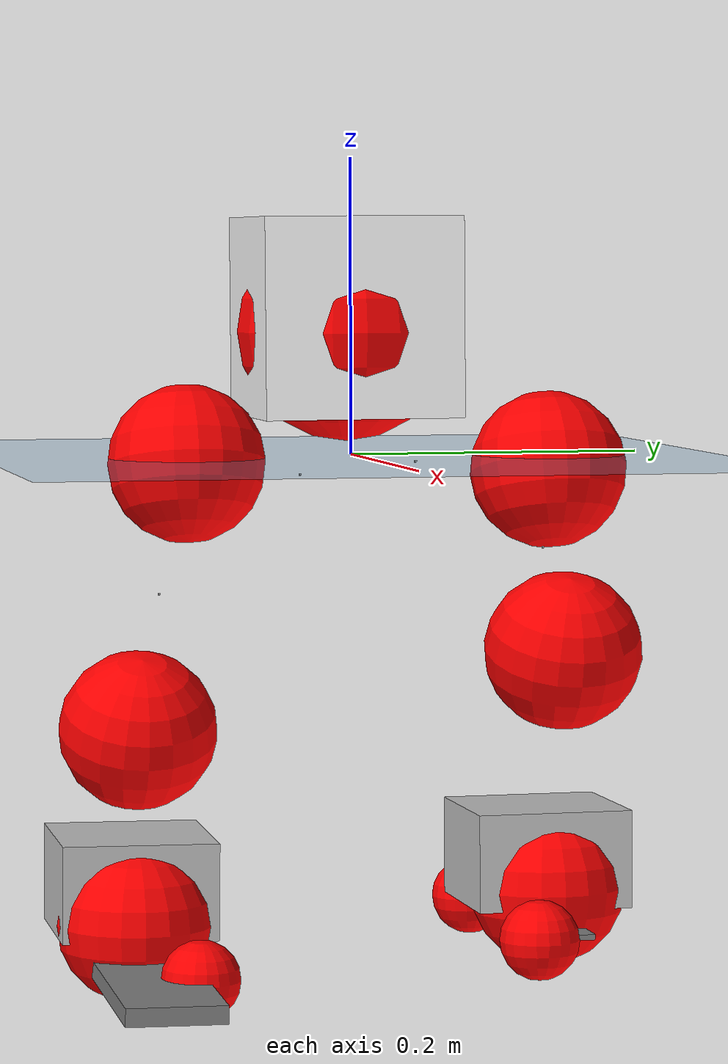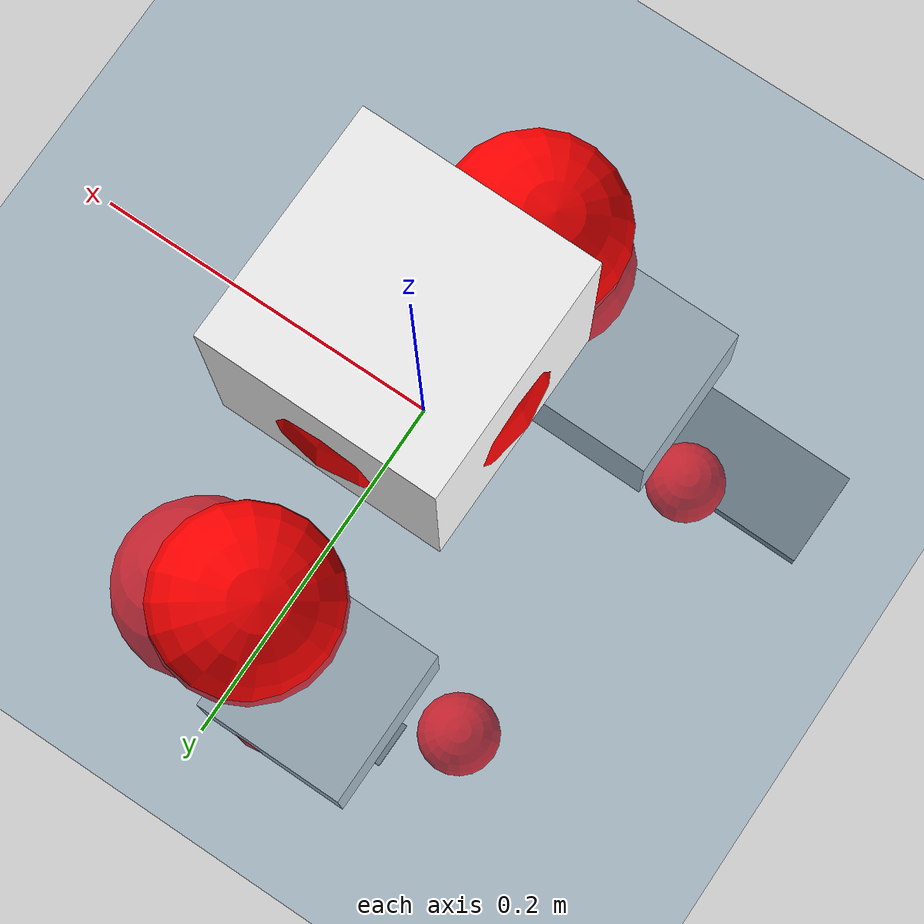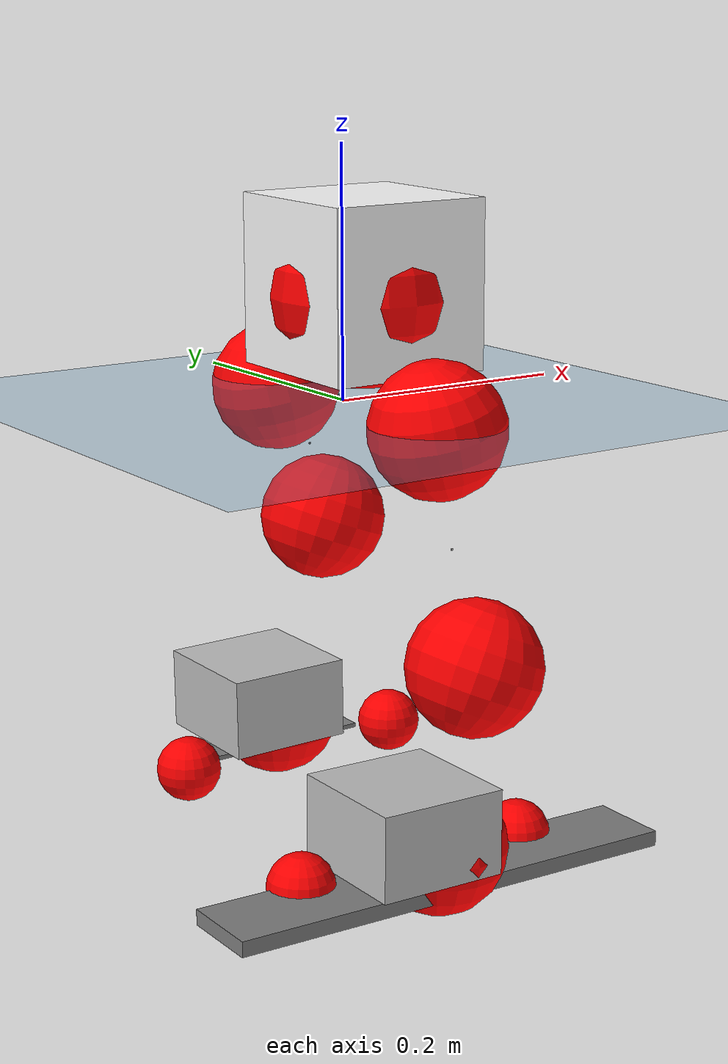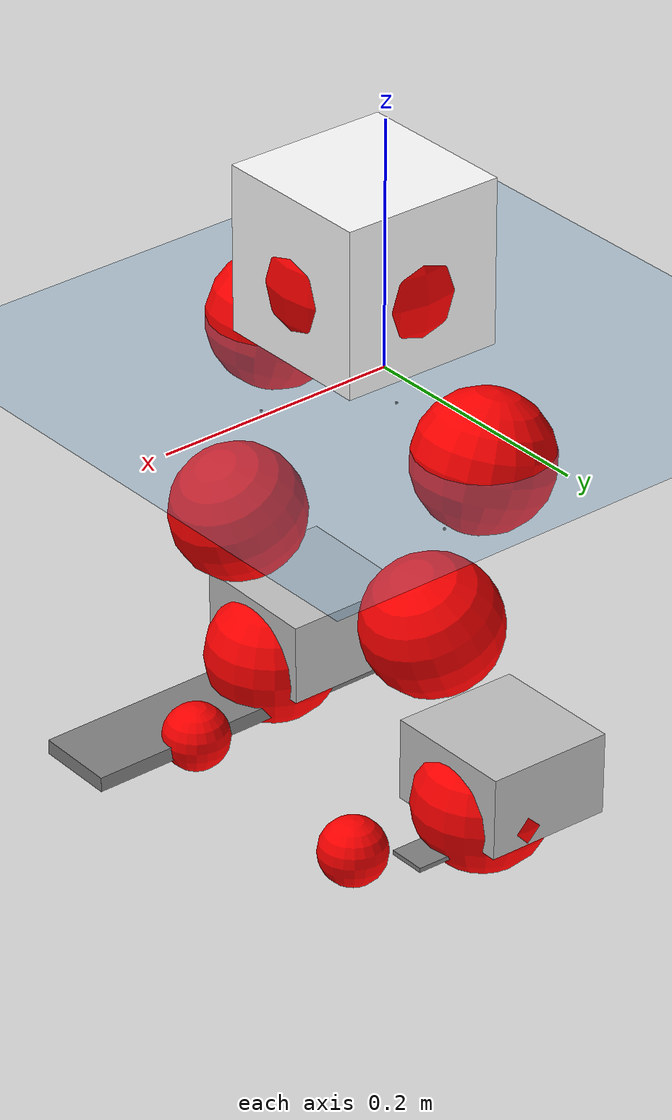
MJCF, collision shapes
<mujoco model="pi_12dof_release_v1">
  <compiler angle="radian" assetdir="assets" balanceinertia="true" inertiafromgeom="false"/>

  <option timestep="0.005" density="1.2" viscosity="2e-05"/>

  <size nkey="1"/>

  <visual>
    <quality shadowsize="8192"/>
    <map shadowclip="0.5"/>
  </visual>

  <default>
    <default class="/">
      <joint armature="0.01" damping="0.01" frictionloss="0.01"/>
      <geom contype="0" conaffinity="0" group="1" solref="-1000 -80"/>
      <site size="0.01 0.005 0.005" group="5"/>
      <general forcelimited="true" biastype="affine" gainprm="20" biasprm="0 -20 -0.5"/>
      <default class="foot">
        <geom size="0.0845 0.036 0.005" type="box" condim="6" group="4" priority="1" friction="0.9 0.2 0.2" solimp="0.015 1 0.005"/>
      </default>
      <default class="reward_collision_sphere">
        <geom group="5" rgba="1 0 0 1"/>
      </default>
    </default>
  </default>

  <asset>
    <texture type="skybox" colorspace="auto" name="//unnamed_texture_0" builtin="gradient" rgb1="0.95 0.95 0.95" rgb2="0.95 0.95 0.95" width="100" height="600"/>
    <texture type="2d" colorspace="auto" name="texplane" builtin="checker" rgb1="0.345 0.575 0.748" rgb2="0.345 0.575 0.748" markrgb="1 1 1" width="512" height="512"/>
    <material name="MatPlane" class="/" texture="texplane" texuniform="true" texrepeat="2 2" specular="0.9"/>
    <mesh name="baselink_1" class="/" file="baselink_1.STL"/>
    <mesh name="r_hip_pitch_link" class="/" file="r_hip_pitch_link.STL"/>
    <mesh name="r_hip_roll_link" class="/" file="r_hip_roll_link.STL"/>
    <mesh name="r_thigh_link" class="/" file="r_thigh_link.STL"/>
    <mesh name="r_calf_link" class="/" file="r_calf_link.STL"/>
    <mesh name="r_ankle_pitch_link" class="/" file="r_ankle_pitch_link.STL"/>
    <mesh name="r_ankle_roll_link" class="/" file="r_ankle_roll_link.STL"/>
    <mesh name="l_hip_pitch_link" class="/" file="l_hip_pitch_link.STL"/>
    <mesh name="l_hip_roll_link" class="/" file="l_hip_roll_link.STL"/>
    <mesh name="l_thigh_link" class="/" file="l_thigh_link.STL"/>
    <mesh name="l_calf_link" class="/" file="l_calf_link.STL"/>
    <mesh name="l_ankle_pitch_link" class="/" file="l_ankle_pitch_link.STL"/>
    <mesh name="l_ankle_roll_link" class="/" file="l_ankle_roll_link.STL"/>
  </asset>

  <worldbody>
    <geom name="floor" class="/" size="100 100 0.125" type="plane" group="0" material="MatPlane"/>
    <light name="toplight_shadow" class="/" pos="0 0 5" dir="0.0990148 0.0990148 -0.990148" type="directional" ambient="0.04 0.04 0.04" diffuse="0.55 0.55 0.55" specular="0.12 0.12 0.12"/>
    <light name="toplight_fill" class="/" pos="0 0 5" dir="0.0990148 0.0990148 -0.990148" type="directional" castshadow="false" ambient="0.04 0.04 0.04" diffuse="0.3 0.3 0.3" specular="0.08 0.08 0.08"/>
    <body name="trunk" pos="0.0143502 -0.0065081 0.0117462" quat="0.999978 0.00339163 -0.00188695 -0.00541552">
      <inertial pos="0.0155467 -0.012324 0.0369074" quat="0.639693 -0.00544636 0.0302047 0.768018" mass="4.34451" diaginertia="0.0483798 0.0658239 0.00314859"/>
      <joint name="//unnamed_joint_0" type="free"/>
      <geom name="//unnamed_geom_1" class="/" type="mesh" density="0" rgba="1 1 1 1" mesh="baselink_1"/>
      <geom name="//unnamed_geom_2" class="/" size="0.0667538 0.0667538 0.0667538" pos="0 0 0.0819617" type="box" rgba="1 1 1 1"/>
      <geom name="//unnamed_geom_3" class="reward_collision_sphere" size="0.0734292" pos="0 0 0.0717165"/>
      <site name="imu" class="/" pos="-0.0617774 0.0980734 0.0492919" size="0.0133508"/>
      <camera name="track" class="/" pos="0 -2.98541 0" quat="0.707107 0.707107 0 0" mode="trackcom"/>
      <camera name="ego_camera" class="/" pos="0.1116 0 0.184414" quat="-0.5 -0.5 0.5 0.5"/>
      <body name="r_hip_pitch_link" pos="-0.00411785 -0.0310179 -0.0243105" quat="0.993098 -0.00587334 -0.117141 -0.000207683">
        <inertial pos="0.013248 -0.0872939 0.00825087" quat="-0.0902954 0.697071 -0.0167106 0.711097" mass="0.681714" diaginertia="0.00061627 0.000546726 6.20419e-05"/>
        <joint name="r_hip_pitch_joint" class="/" pos="0 0 0" axis="0.0435408 -0.998718 -0.0258355" stiffness="0.0863284" range="-1.81514 1.14881" armature="0.0215091" damping="0" frictionloss="0.00751208"/>
        <geom name="//unnamed_geom_4" class="/" type="mesh" density="0" rgba="0.75294 0.75294 0.75294 1" mesh="r_hip_pitch_link"/>
        <geom name="//unnamed_geom_5" class="/" size="0.000667538 0.000667538 0.000667538" type="box" rgba="0.75294 0.75294 0.75294 1"/>
        <body name="r_hip_roll_link" pos="0.000426289 -0.0771546 0.00789254" quat="0.999999 0.000127909 0.000961183 0.000595041">
          <inertial pos="0.00182003 0.0180275 -0.0426437" quat="0.684154 -0.0599063 -0.109607 0.718562" mass="0.947545" diaginertia="0.0020949 0.00223825 0.000123996"/>
          <joint name="r_hip_roll_joint" class="/" pos="0 0 0" axis="-0.997391 0.0576836 0.0434044" stiffness="0.0634535" range="-0.230858 0.147998" armature="0.00643024" damping="0.0602579" frictionloss="0.0196164"/>
          <geom name="//unnamed_geom_6" class="/" type="mesh" density="0" rgba="0.75294 0.75294 0.75294 1" mesh="r_hip_roll_link"/>
          <geom name="//unnamed_geom_7" class="/" size="0.000667538 0.000667538 0.000667538" type="box" rgba="0.75294 0.75294 0.75294 1"/>
          <geom name="//unnamed_geom_8" class="reward_collision_sphere" size="0.0534031"/>
          <body name="r_thigh_link" pos="-0.0201435 -0.0184374 -0.0849865" quat="1 0.000118241 0.00014398 -1.88255e-05">
            <inertial pos="0.00894705 0.014098 -0.0626106" quat="0.73332 0.679826 -0.0087939 0.000931043" mass="0.199734" diaginertia="0.000717215 0.000735847 6.07821e-05"/>
            <joint name="r_thigh_joint" class="/" pos="0 0 0" axis="-0.0658919 -0.0132477 -0.997739" range="-0.478145 0.383584" armature="0.00813887" damping="0.083032" frictionloss="0.026489"/>
            <geom name="//unnamed_geom_9" class="/" type="mesh" density="0" rgba="0.75294 0.75294 0.75294 1" mesh="r_thigh_link"/>
            <geom name="//unnamed_geom_10" class="/" size="0.000667538 0.000667538 0.000667538" type="box" rgba="0.75294 0.75294 0.75294 1"/>
            <body name="r_calf_link" pos="-0.0114546 -0.0159017 -0.090014" quat="0.947087 0.000852892 0.320976 -0.000134324">
              <inertial pos="0.0081194 0.0121654 -0.0753725" quat="0.995589 -0.0716325 0.00370446 0.0604811" mass="1.53776" diaginertia="0.0228134 0.0173885 0.000138514"/>
              <joint name="r_calf_joint" class="/" pos="0 0 0" axis="0.00796505 -0.999281 -0.0370694" stiffness="0.0863087" range="-2.00012 0.683255" armature="0.0243142" damping="0" frictionloss="0.0159003"/>
              <geom name="//unnamed_geom_11" class="/" type="mesh" density="0" rgba="0.75294 0.75294 0.75294 1" mesh="r_calf_link"/>
              <geom name="//unnamed_geom_12" class="/" size="0.000667538 0.000667538 0.000667538" type="box" rgba="0.75294 0.75294 0.75294 1"/>
              <geom name="//unnamed_geom_13" class="reward_collision_sphere" size="0.0534031"/>
              <body name="r_ankle_pitch_link" pos="-0.0113115 0.00403789 -0.12799" quat="0.979575 -0.00164384 -0.20104 -0.00353803">
                <inertial pos="0.00909285 0.00436963 0.0183409" quat="-0.0831041 0.68964 -0.048964 0.717699" mass="0.287142" diaginertia="0.00199858 0.00127734 0.000105056"/>
                <joint name="r_ankle_pitch_joint" class="/" pos="0 0 0" axis="-0.00361239 -0.998744 0.0499722" range="-1.34624 0.120087" armature="0.0131453" damping="0.00223716" frictionloss="0.0022443"/>
                <geom name="//unnamed_geom_14" class="/" type="mesh" density="0" rgba="0.75294 0.75294 0.75294 1" mesh="r_ankle_pitch_link"/>
                <geom name="//unnamed_geom_15" class="/" size="0.052068 0.0534031 0.0333769" type="box" rgba="0.75294 0.75294 0.75294 1"/>
                <body name="r_ankle_roll_link" pos="0.105953 -0.0013135 -0.00333033" quat="1 0.000356771 0.000319188 -0.00012519">
                  <inertial pos="-0.0427782 -0.00362918 -0.0347828" quat="0.594097 0.435224 0.383945 0.55697" mass="1.83515" diaginertia="0.00895538 0.00723243 0.000486103"/>
                  <joint name="r_ankle_roll_joint" class="/" pos="0 0 0" axis="-0.996228 0.0801871 0.0331629" range="-0.425265 0.484966" armature="0.026198" damping="0" frictionloss="0.0215781"/>
                  <geom name="//unnamed_geom_16" class="/" type="mesh" density="0" rgba="0.75294 0.75294 0.75294 1" mesh="r_ankle_roll_link"/>
                  <geom name="//unnamed_geom_17" class="/" type="mesh" rgba="0.75294 0.75294 0.75294 1" mesh="r_ankle_roll_link"/>
                  <geom name="right_foot" class="foot" size="0.189866 0.0332075 0.00610957" pos="-0.0758882 0 -0.0450789"/>
                  <geom name="//unnamed_geom_19" class="reward_collision_sphere" size="0.0534031" pos="-0.0744002 0 -0.0204904"/>
                  <geom name="//unnamed_geom_20" class="reward_collision_sphere" size="0.0267015" pos="0.0223201 0.0298541 -0.0409808"/>
                  <geom name="//unnamed_geom_21" class="reward_collision_sphere" size="0.0267015" pos="-0.178561 0.0298541 -0.0409808"/>
                  <site name="right_foot" class="foot" pos="-0.0758882 0 -0.0450789" size="0.0133508"/>
                </body>
              </body>
            </body>
          </body>
        </body>
      </body>
      <body name="l_hip_pitch_link" pos="0.00713633 0.046191 -0.0161709" quat="0.992066 0.000670587 -0.125716 -0.000194915">
        <inertial pos="-0.00190895 0.0864891 0.0171335" quat="-0.0285322 0.724195 0.0144246 0.688854" mass="0.780525" diaginertia="0.000798931 0.000982852 0.000114267"/>
        <joint name="l_hip_pitch_joint" class="/" pos="0 0 0" axis="0.0614639 0.998109 1.218e-05" stiffness="0.0168774" range="-1.54312 1.64866" armature="0.00273695" damping="0" frictionloss="0.0177993"/>
        <geom name="//unnamed_geom_22" class="/" type="mesh" density="0" rgba="0.75294 0.75294 0.75294 1" mesh="l_hip_pitch_link"/>
        <geom name="//unnamed_geom_23" class="/" size="0.000667538 0.000667538 0.000667538" type="box" rgba="0.75294 0.75294 0.75294 1"/>
        <body name="l_hip_roll_link" pos="-0.004972 0.0930566 -0.00633464" quat="1 5.70357e-06 -3.77836e-05 -0.000159818">
          <inertial pos="0.0138564 -0.00650898 -0.0427563" quat="0.657273 -0.0604372 -0.144401 0.737216" mass="0.873651" diaginertia="0.00258348 0.0016944 0.000153251"/>
          <joint name="l_hip_roll_joint" class="/" pos="0 0 0" axis="-0.999367 0.0342245 0.00971898" range="-0.139379 -0.189315" armature="0.0219102" damping="0.109183" frictionloss="0.0130828"/>
          <geom name="//unnamed_geom_24" class="/" type="mesh" density="0" rgba="0.75294 0.75294 0.75294 1" mesh="l_hip_roll_link"/>
          <geom name="//unnamed_geom_25" class="/" size="0.000667538 0.000667538 0.000667538" type="box" rgba="0.75294 0.75294 0.75294 1"/>
          <geom name="//unnamed_geom_26" class="reward_collision_sphere" size="0.0534031"/>
          <body name="l_thigh_link" pos="0.0129601 -0.010774 -0.0561075" quat="0.999997 -0.000545971 -0.00218473 -0.000487778">
            <inertial pos="-0.012493 0.0112012 -0.0624348" quat="0.655888 0.751205 -0.0653254 -0.0351541" mass="0.307504" diaginertia="0.000906762 0.000590529 7.08836e-05"/>
            <joint name="l_thigh_joint" class="/" pos="0 0 0" axis="0.000276634 -0.000182192 -1" stiffness="0.0949858" range="-0.672137 0.540891" armature="0.0135408" damping="0.0194826" frictionloss="0.0174809"/>
            <geom name="//unnamed_geom_27" class="/" type="mesh" density="0" rgba="0.75294 0.75294 0.75294 1" mesh="l_thigh_link"/>
            <geom name="//unnamed_geom_28" class="/" size="0.000667538 0.000667538 0.000667538" type="box" rgba="0.75294 0.75294 0.75294 1"/>
            <body name="l_calf_link" pos="0.00020421 0.00901376 -0.0705729" quat="0.948315 -0.00250007 0.317298 0.00382631">
              <inertial pos="-0.00339984 -0.0112912 -0.0570999" quat="0.999961 0.00617245 0.00194469 0.00598446" mass="2.06895" diaginertia="0.0345482 0.0350391 0.000239332"/>
              <joint name="l_calf_joint" class="/" pos="0 0 0" axis="0.00310564 0.999952 0.00930127" range="-1.03473 1.30426" armature="0.0130095" damping="0.0165064" frictionloss="0.00698646"/>
              <geom name="//unnamed_geom_29" class="/" type="mesh" density="0" rgba="0.75294 0.75294 0.75294 1" mesh="l_calf_link"/>
              <geom name="//unnamed_geom_30" class="/" size="0.000667538 0.000667538 0.000667538" type="box" rgba="0.75294 0.75294 0.75294 1"/>
              <geom name="//unnamed_geom_31" class="reward_collision_sphere" size="0.0534031"/>
              <body name="l_ankle_pitch_link" pos="-0.00735515 -0.000227924 -0.161415" quat="0.980058 0.000879394 -0.198711 -0.000576268">
                <inertial pos="0.0201148 -0.0155682 0.00108426" quat="0.0044189 0.702829 0.000975376 0.711345" mass="0.601121" diaginertia="0.00231648 0.00210938 0.000130273"/>
                <joint name="l_ankle_pitch_joint" class="/" pos="0 0 0" axis="-0.00891736 0.999956 -0.00286731" stiffness="0.014212" range="-0.156057 1.44739" armature="0.0229197" damping="0.0300956" frictionloss="0.00811843"/>
                <geom name="//unnamed_geom_32" class="/" type="mesh" density="0" rgba="0.75294 0.75294 0.75294 1" mesh="l_ankle_pitch_link"/>
                <geom name="//unnamed_geom_33" class="/" size="0.052068 0.0534031 0.0333769" type="box" rgba="0.75294 0.75294 0.75294 1"/>
                <body name="l_ankle_roll_link" pos="0.0936921 0.00119853 -0.000913021" quat="0.999994 0.00101641 0.000364047 -0.00327433">
                  <inertial pos="-0.0451436 -4.15367e-05 -0.0126914" quat="0.572847 0.43971 0.40479 0.560933" mass="1.71598" diaginertia="0.0106065 0.009565 0.000351642"/>
                  <joint name="l_ankle_roll_joint" class="/" pos="0 0 0" axis="-0.998982 -0.0447251 -0.00591934" stiffness="0.0144991" range="-0.34117 0.134191" armature="0.00380209" damping="0.0247911" frictionloss="0.0137565"/>
                  <geom name="//unnamed_geom_34" class="/" type="mesh" density="0" rgba="0.75294 0.75294 0.75294 1" mesh="l_ankle_roll_link"/>
                  <geom name="//unnamed_geom_35" class="/" type="mesh" rgba="0.75294 0.75294 0.75294 1" mesh="l_ankle_roll_link"/>
                  <geom name="left_foot" class="foot" size="0.0724444 0.0153819 0.00183583" pos="-0.0758882 0 -0.0450789"/>
                  <geom name="//unnamed_geom_37" class="reward_collision_sphere" size="0.0534031" pos="-0.0744002 0 -0.0204904"/>
                  <geom name="//unnamed_geom_38" class="reward_collision_sphere" size="0.0267015" pos="0.0223201 -0.0298541 -0.0409808"/>
                  <geom name="//unnamed_geom_39" class="reward_collision_sphere" size="0.0267015" pos="-0.178561 -0.0298541 -0.0409808"/>
                  <site name="left_foot" class="foot" pos="-0.0758882 0 -0.0450789" size="0.0133508"/>
                </body>
              </body>
            </body>
          </body>
        </body>
      </body>
    </body>
  </worldbody>

  <contact>
    <pair class="/" geom1="floor" geom2="right_foot" name="//unnamed_contact_1"/>
    <pair class="/" geom1="floor" geom2="left_foot" name="//unnamed_contact_0"/>
  </contact>

  <actuator>
    <general name="r_hip_pitch_joint" class="/" joint="r_hip_pitch_joint" forcerange="-27.5466 27.5466" gainprm="28.9207" biasprm="0 -28.9207 -0.724271"/>
    <general name="r_hip_roll_joint" class="/" joint="r_hip_roll_joint" forcerange="-45.8026 45.8026" gainprm="28.9207" biasprm="0 -28.9207 -0.724271"/>
    <general name="r_thigh_joint" class="/" joint="r_thigh_joint" forcerange="-15.483 15.483" gainprm="28.9207" biasprm="0 -28.9207 -0.724271"/>
    <general name="r_calf_joint" class="/" joint="r_calf_joint" forcerange="-37.8242 37.8242" gainprm="28.9207" biasprm="0 -28.9207 -0.724271"/>
    <general name="r_ankle_pitch_joint" class="/" joint="r_ankle_pitch_joint" forcerange="-17.5704 17.5704" gainprm="28.9207" biasprm="0 -28.9207 -0.724271"/>
    <general name="r_ankle_roll_joint" class="/" joint="r_ankle_roll_joint" forcerange="-15.1433 15.1433" gainprm="28.9207" biasprm="0 -28.9207 -0.724271"/>
    <general name="l_hip_pitch_joint" class="/" joint="l_hip_pitch_joint" forcerange="-20.6284 20.6284" gainprm="28.9207" biasprm="0 -28.9207 -0.724271"/>
    <general name="l_hip_roll_joint" class="/" joint="l_hip_roll_joint" forcerange="-10.911 10.911" gainprm="28.9207" biasprm="0 -28.9207 -0.724271"/>
    <general name="l_thigh_joint" class="/" joint="l_thigh_joint" forcerange="-46.3462 46.3462" gainprm="28.9207" biasprm="0 -28.9207 -0.724271"/>
    <general name="l_calf_joint" class="/" joint="l_calf_joint" forcerange="-22.3648 22.3648" gainprm="28.9207" biasprm="0 -28.9207 -0.724271"/>
    <general name="l_ankle_pitch_joint" class="/" joint="l_ankle_pitch_joint" forcerange="-14.404 14.404" gainprm="28.9207" biasprm="0 -28.9207 -0.724271"/>
    <general name="l_ankle_roll_joint" class="/" joint="l_ankle_roll_joint" forcerange="-7.00921 7.00921" gainprm="28.9207" biasprm="0 -28.9207 -0.724271"/>
  </actuator>

  <sensor>
    <gyro site="imu" name="imu_angular_velocity"/>
    <velocimeter site="imu" name="imu_linear_velocity"/>
    <framelinvel objtype="site" objname="left_foot" name="left_foot_global_linear_velocity"/>
    <framelinvel objtype="site" objname="right_foot" name="right_foot_global_linear_velocity"/>
  </sensor>

  <keyframe>
    <key name="home" qpos="0 0 0.291 1 0 0 0 0.4 0 0 -0.8 0.4 0 -0.4 0 0 0.8 -0.4 0"/>
  </keyframe>
</mujoco>
